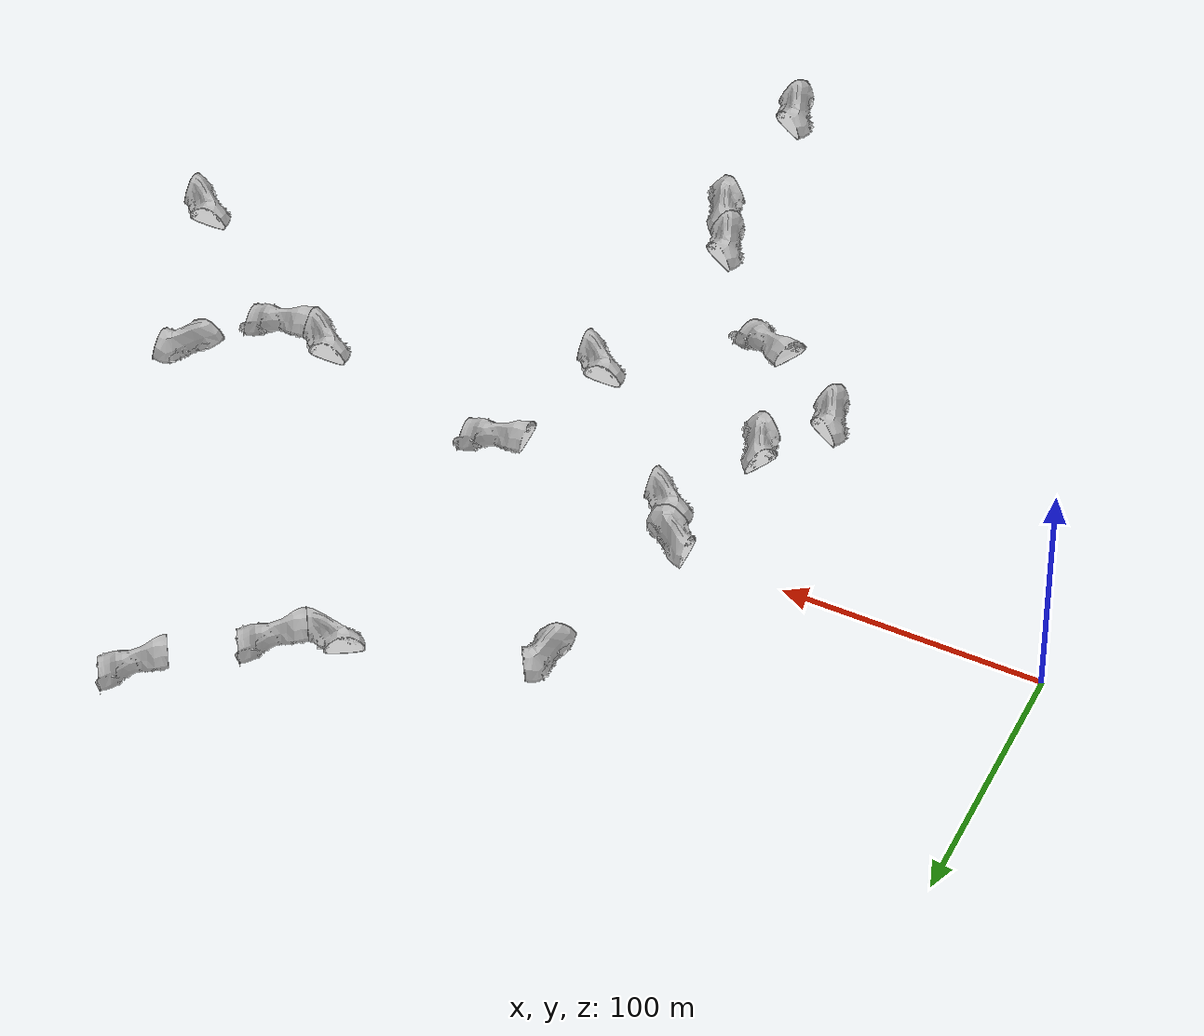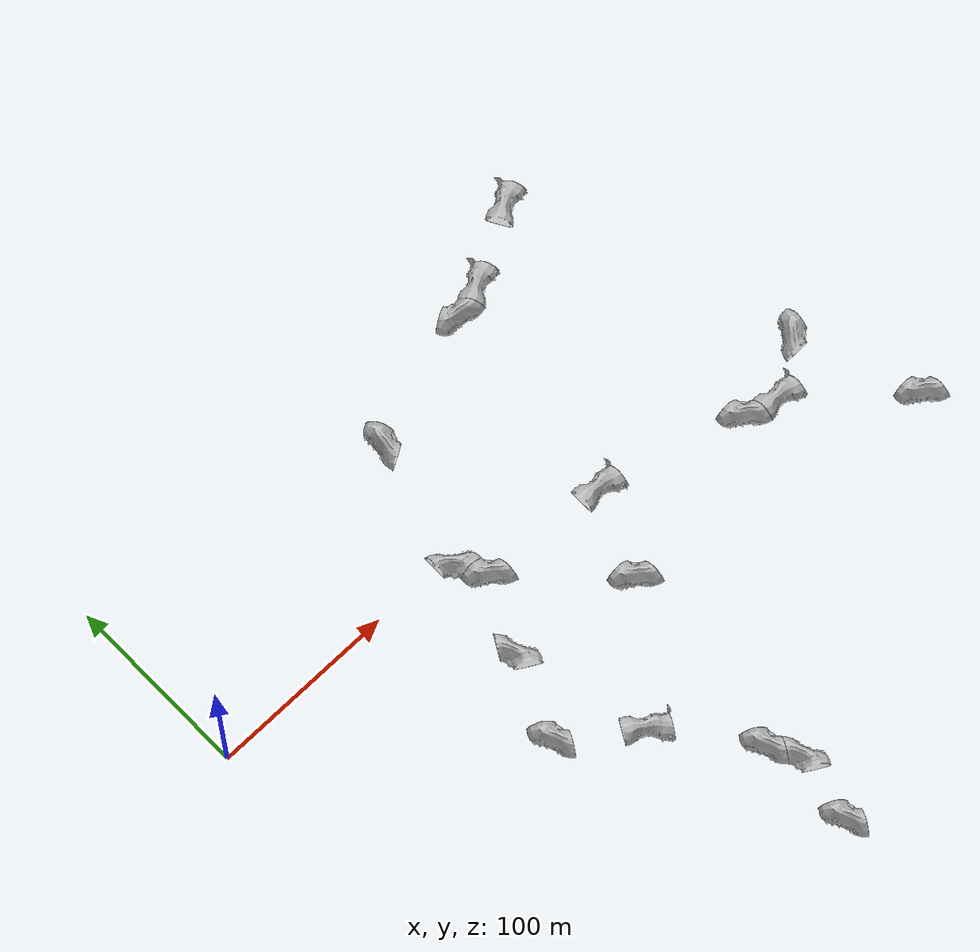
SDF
<sdf version="1.6">
 <world name="cosmos">
  <physics name="1ms" type="ode">
   <max_step_size>0.01</max_step_size>
   <real_time_factor>1.0</real_time_factor>
   <real_time_update_rate>100</real_time_update_rate>
  </physics>
  <scene>
   <ambient>0.588235 0.588235 0.588235 1</ambient>
   <background>0.980392 0.980392 0.980392 1</background>
   <grid>true</grid>
   <origin_visual>true</origin_visual>
  </scene>
  <plugin filename="gz-sim-physics-system" name="gz::sim::systems::Physics"/>
  <plugin filename="gz-sim-user-commands-system" name="gz::sim::systems::UserCommands"/>
  <plugin filename="gz-sim-scene-broadcaster-system" name="gz::sim::systems::SceneBroadcaster"/>
  <plugin filename="gz-sim-imu-system" name="gz::sim::systems::Imu"/>
  <plugin filename="gz-sim-sensors-system" name="gz::sim::systems::Sensors">
   <render_engine>ogre2</render_engine>
  </plugin>
  <include>
   <name>tile_7</name>
   <uri>model://Cave Corner 02</uri>
   <pose>150.000000 0.000000 0.000000 0 0 1.570796</pose>
  </include>
  <include>
   <name>tile_9</name>
   <uri>model://Cave Corner 02</uri>
   <pose>150.000000 -25.000000 0.000000 0 0 -1.570796</pose>
  </include>
  <include>
   <name>tile_12</name>
   <uri>model://Cave Elevation</uri>
   <pose>225.000000 -25.000000 -10.000000 0 0 -1.570796</pose>
  </include>
  <include>
   <name>tile_16</name>
   <uri>model://Cave Corner 02</uri>
   <pose>350.000000 -25.000000 -20.000000 0 0 3.141593</pose>
  </include>
  <include>
   <name>tile_20</name>
   <uri>model://Cave Corner 02</uri>
   <pose>300.000000 -50.000000 -10.000000 0 0 -1.570796</pose>
  </include>
  <include>
   <name>tile_21</name>
   <uri>model://Cave Elevation</uri>
   <pose>325.000000 -50.000000 -20.000000 0 0 -1.570796</pose>
  </include>
  <include>
   <name>tile_24</name>
   <uri>model://Cave Corner 02</uri>
   <pose>200.000000 -75.000000 0.000000 0 0 -1.570796</pose>
  </include>
  <include>
   <name>tile_26</name>
   <uri>model://Cave Corner 02</uri>
   <pose>375.000000 -100.000000 -20.000000 0 0 -1.570796</pose>
  </include>
  <include>
   <name>tile_102</name>
   <uri>model://Cave Corner 02</uri>
   <pose>141.701905 -56.250000 0.000000 0 0 1.047198</pose>
  </include>
  <include>
   <name>tile_106</name>
   <uri>model://Cave Corner 02</uri>
   <pose>116.701905 -99.551270 -20.000000 0 0 -2.094395</pose>
  </include>
  <include>
   <name>tile_108</name>
   <uri>model://Cave Elevation</uri>
   <pose>160.003175 -124.551270 -30.000000 0 0 -2.094395</pose>
  </include>
  <include>
   <name>tile_111</name>
   <uri>model://Cave Corner 02</uri>
   <pose>190.804446 -171.201905 -30.000000 0 0 -2.094395</pose>
  </include>
  <include>
   <name>tile_112</name>
   <uri>model://Cave Corner 02</uri>
   <pose>212.455081 -183.701905 -30.000000 0 0 1.047198</pose>
  </include>
  <include>
   <name>tile_114</name>
   <uri>model://Cave Corner 02</uri>
   <pose>187.455081 -227.003175 -10.000000 0 0 -2.094395</pose>
  </include>
  <include>
   <name>tile_200</name>
   <uri>model://Cave Corner 02</uri>
   <pose>157.551270 65.349365 0.000000 0 0 3.665191</pose>
  </include>
  <include>
   <name>tile_207</name>
   <uri>model://Cave Corner 02</uri>
   <pose>235.003175 81.198730 0.000000 0 0 -1.047198</pose>
  </include>
  <include>
   <name>tile_208</name>
   <uri>model://Cave Elevation</uri>
   <pose>256.653811 93.698730 -10.000000 0 0 -1.047198</pose>
  </include>
  <include>
   <name>tile_210</name>
   <uri>model://Cave Elevation</uri>
   <pose>299.955081 118.698730 -20.000000 0 0 -1.047198</pose>
  </include>
 </world>
</sdf>

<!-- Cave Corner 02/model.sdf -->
<sdf version="1.6">
  <model name="Cave Corner 02">
    <pose>0 0 0 0 0 0</pose>
    <static>true</static>
    <link name="link">
      <collision name="collision">
        <geometry>
          <mesh>
           <uri>model://Cave Corner 02/meshes/cavecorner02.dae</uri>
         </mesh>
        </geometry>
      </collision>
      <visual name="visual">
        <geometry>
          <mesh>
           <uri>model://Cave Corner 02/meshes/cavecorner02.dae</uri>
         </mesh>
        </geometry>
      </visual>
    </link>
  </model>
 </sdf>

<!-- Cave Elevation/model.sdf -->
<sdf version="1.6">
  <model name="Cave Elevation">
    <pose>0 0 0 0 0 0</pose>
    <static>true</static>
    <link name="link">
      <collision name="collision">
        <geometry>
          <mesh>
            <uri>model://Cave Elevation/meshes/caveelevation.dae</uri>
         </mesh>
        </geometry>
      </collision>
      <visual name="visual">
        <geometry>
          <mesh>
            <uri>model://Cave Elevation/meshes/caveelevation.dae</uri>
         </mesh>
        </geometry>
      </visual>
    </link>
  </model>
 </sdf>
